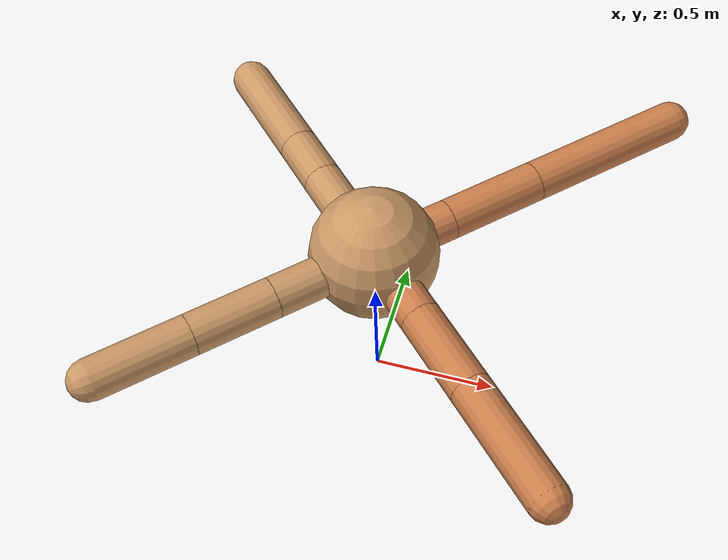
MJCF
<mujoco model="ant">
  <compiler angle="degree" coordinate="local" inertiafromgeom="true" />
  <option integrator="RK4" timestep="0.01" />
  <custom>
    <numeric data="0.0 0.0 0.55 1.0 0.0 0.0 0.0 0.0 1.0 0.0 -1.0 0.0 -1.0 0.0 1.0" name="init_qpos" />
  </custom>
  <default>
    <joint armature="1" damping="1" limited="true" />
    <geom conaffinity="0" condim="3" density="5.0" friction="1.5 0.1 0.1" margin="0.01" rgba="0.8 0.6 0.4 1" />
  </default>
  <worldbody>
    <body name="torso" pos="0 0 0.75">
      <geom name="torso_geom" pos="0 0 0" size="0.25" type="sphere" />

      <body name="front_left_leg" pos="0 0 0">
        <geom fromto="0.0 0.0 0.0 0.22863382080624728 0.22863382080624728 0.0" name="aux_1_geom" size="0.08" type="capsule" rgba=".8 .5 .3 1" />
        <body name="aux_1" pos="0.22863382080624728 0.22863382080624728 0.0">
          <joint axis="0 0 1" name="hip_1" pos="0.0 0.0 0.0" range="-40 40" type="hinge" />
          <geom fromto="0.0 0.0 0.0 0.2773317252277794 0.2773317252277794 0.0" name="left_leg_geom" size="0.08" type="capsule" rgba=".8 .5 .3 1" />
          <body pos="0.2773317252277794 0.2773317252277794 0.0" name="front_left_foot">
            <joint axis="-1 1 0" name="ankle_1" pos="0.0 0.0 0.0" range="30 100" type="hinge" />
            <geom fromto="0.0 0.0 0.0 0.4724968277919187 0.4724968277919187 0.0" name="left_ankle_geom" size="0.08" type="capsule" rgba=".8 .5 .3 1" />
          </body>
        </body>
      </body>
      <body name="front_right_leg" pos="0 0 0">
        <geom fromto="0.0 0.0 0.0 -0.29668246493071265 0.29668246493071265 0.0" name="aux_2_geom" size="0.08" type="capsule" />
        <body name="aux_2" pos="-0.29668246493071265 0.29668246493071265 0.0">
          <joint axis="0 0 1" name="hip_2" pos="0.0 0.0 0.0" range="-40 40" type="hinge" />
          <geom fromto="0.0 0.0 0.0 -0.14710902438707713 0.14710902438707713 0.0" name="right_leg_geom" size="0.08" type="capsule" />
          <body pos="-0.14710902438707713 0.14710902438707713 0.0" name="front_right_foot">
            <joint axis="1 1 0" name="ankle_2" pos="0.0 0.0 0.0" range="-100 -30" type="hinge" />
            <geom fromto="0.0 0.0 0.0 -0.31066137771246694 0.31066137771246694 0.0" name="right_ankle_geom" size="0.08" type="capsule" />
          </body>
        </body>
      </body>
      <body name="left_back_leg" pos="0 0 0">
        <geom fromto="0.0 0.0 0.0 -0.29841701173953283 -0.29841701173953283 0.0" name="aux_3_geom" size="0.08" type="capsule" />
        <body name="aux_3" pos="-0.29841701173953283 -0.29841701173953283 0.0">
          <joint axis="0 0 1" name="hip_3" pos="0.0 0.0 0.0" range="-40 40" type="hinge" />
          <geom fromto="0.0 0.0 0.0 -0.23364998584130783 -0.23364998584130783 0.0" name="back_leg_geom" size="0.08" type="capsule" />
          <body pos="-0.23364998584130783 -0.23364998584130783 0.0" name="left_back_foot">
            <joint axis="-1 1 0" name="ankle_3" pos="0.0 0.0 0.0" range="-100 -30" type="hinge" />
            <geom fromto="0.0 0.0 0.0 -0.2706133833551238 -0.2706133833551238 0.0" name="third_ankle_geom" size="0.08" type="capsule" />
          </body>
        </body>
      </body>
      <body name="right_back_leg" pos="0 0 0">
        <geom fromto="0.0 0.0 0.0 0.2455286778324629 -0.2455286778324629 0.0" name="aux_4_geom" size="0.08" type="capsule" rgba=".8 .5 .3 1" />
        <body name="aux_4" pos="0.2455286778324629 -0.2455286778324629 0.0">
          <joint axis="0 0 1" name="hip_4" pos="0.0 0.0 0.0" range="-40 40" type="hinge" />
          <geom fromto="0.0 0.0 0.0 0.24164633674649647 -0.24164633674649647 0.0" name="rightback_leg_geom" size="0.08" type="capsule" rgba=".8 .5 .3 1" />
          <body pos="0.24164633674649647 -0.24164633674649647 0.0" name="right_back_foot">
            <joint axis="1 1 0" name="ankle_4" pos="0.0 0.0 0.0" range="30 100" type="hinge" />
            <geom fromto="0.0 0.0 0.0 0.34372068203871153 -0.34372068203871153 0.0" name="fourth_ankle_geom" size="0.08" type="capsule" rgba=".8 .5 .3 1" />
          </body>
        </body>
      </body>
    </body>
  </worldbody>
  <actuator>
    <motor ctrllimited="true" ctrlrange="-1.0 1.0" joint="hip_4" gear="150" />
    <motor ctrllimited="true" ctrlrange="-1.0 1.0" joint="ankle_4" gear="150" />
    <motor ctrllimited="true" ctrlrange="-1.0 1.0" joint="hip_1" gear="150" />
    <motor ctrllimited="true" ctrlrange="-1.0 1.0" joint="ankle_1" gear="150" />
    <motor ctrllimited="true" ctrlrange="-1.0 1.0" joint="hip_2" gear="150" />
    <motor ctrllimited="true" ctrlrange="-1.0 1.0" joint="ankle_2" gear="150" />
    <motor ctrllimited="true" ctrlrange="-1.0 1.0" joint="hip_3" gear="150" />
    <motor ctrllimited="true" ctrlrange="-1.0 1.0" joint="ankle_3" gear="150" />
  </actuator>
</mujoco>
